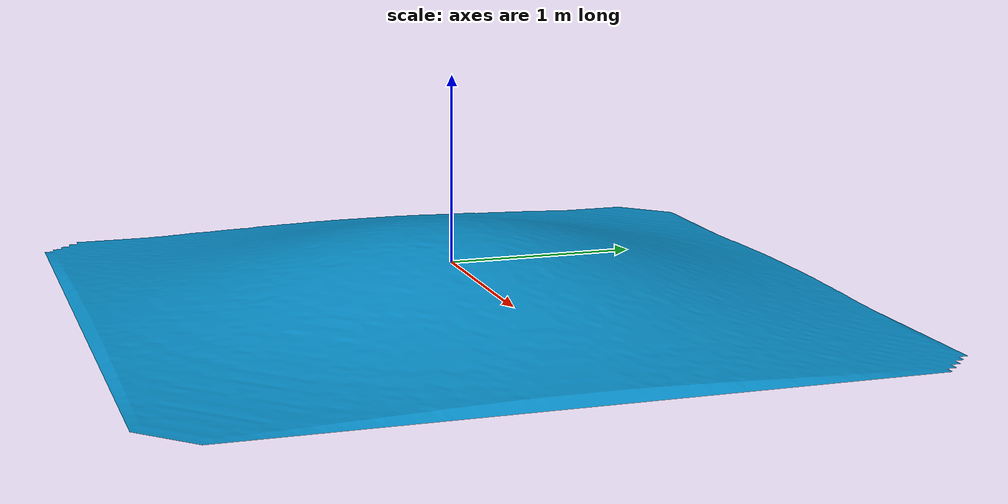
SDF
<?xml version='1.0'?>
<sdf version="1.7">
  <model name='test_item'>
    <pose>0 0 0 0 0 0</pose>
    <static>1</static>

    <link name='link'>

      <collision name='collision'>
        <geometry>
          <mesh>
            <uri>model://folder_test/meshes/mesh_waves.stl</uri>
          </mesh>
        </geometry>
      </collision>

      <visual name='visual'>
        <cast_shadows>1</cast_shadows>
        <geometry>
          <mesh>
            <uri>model://folder_test/meshes/mesh_waves.dae</uri>
          </mesh>
        </geometry>
      </visual>

    </link>
  </model>
</sdf>
